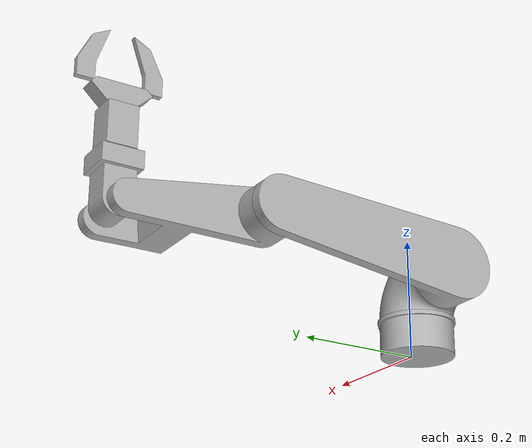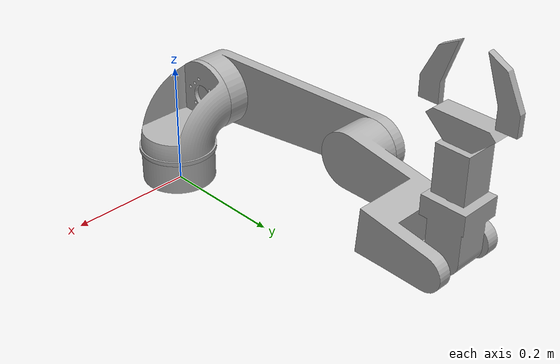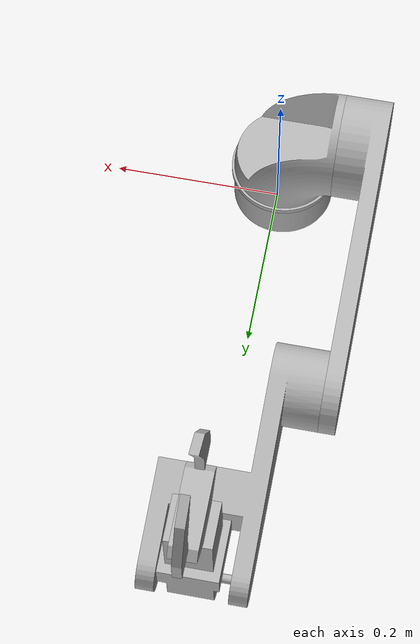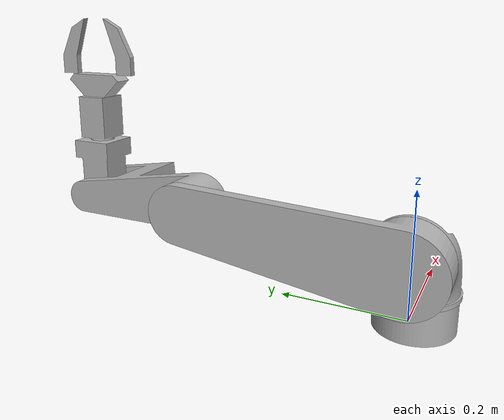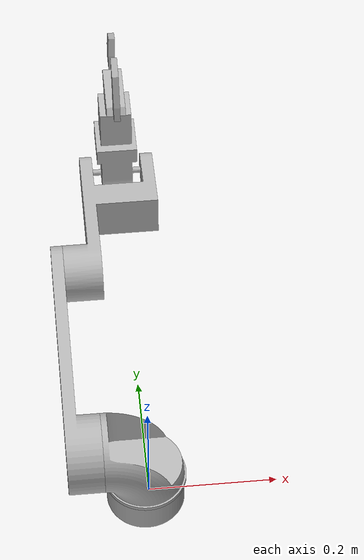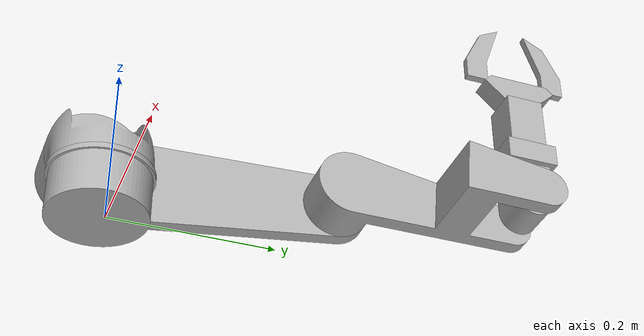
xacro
<?xml version="1.0" ?>
<robot name="rake_robot_arm" xmlns:xacro="http://www.ros.org/wiki/xacro">

<xacro:include filename="$(find rake_robot_arm_description)/urdf/materials.xacro" />
<xacro:include filename="$(find rake_robot_arm_description)/urdf/rake_robot_arm.trans" />
<xacro:include filename="$(find rake_robot_arm_description)/urdf/rake_robot_arm.gazebo" />
<link name="base_link">
  <inertial>
    <origin rpy="0 0 0" xyz="-0.005428619003295954 -0.008613437067487122 0.026559408634131962"/>
    <mass value="0.6833341012676234"/>
    <inertia ixx="0.000775" ixy="-0.0" ixz="-0.0" iyy="0.000775" iyz="-0.0" izz="0.00123"/>
  </inertial>
  <visual>
    <origin rpy="0 0 0" xyz="0 0 0"/>
    <geometry>
      <mesh filename="package://rake_robot_arm_description/meshes/base_link.stl" scale="0.001 0.001 0.001"/>
    </geometry>
    <material name="silver"/>
  </visual>
  <collision>
    <origin rpy="0 0 0" xyz="0 0 0"/>
    <geometry>
      <mesh filename="package://rake_robot_arm_description/meshes/base_link.stl" scale="0.001 0.001 0.001"/>
    </geometry>
  </collision>
</link>

<link name="shell_1">
  <inertial>
    <origin rpy="0 0 0" xyz="3.809967040642459e-07 -4.3706748690044983e-07 0.0035004086341318685"/>
    <mass value="0.0995024703119412"/>
    <inertia ixx="9.9e-05" ixy="0.0" ixz="0.0" iyy="9.9e-05" iyz="0.0" izz="0.000197"/>
  </inertial>
  <visual>
    <origin rpy="0 0 0" xyz="0.005429 0.008613 -0.053059"/>
    <geometry>
      <mesh filename="package://rake_robot_arm_description/meshes/shell_1.stl" scale="0.001 0.001 0.001"/>
    </geometry>
    <material name="silver"/>
  </visual>
  <collision>
    <origin rpy="0 0 0" xyz="0.005429 0.008613 -0.053059"/>
    <geometry>
      <mesh filename="package://rake_robot_arm_description/meshes/shell_1.stl" scale="0.001 0.001 0.001"/>
    </geometry>
  </collision>
</link>

<link name="shoulder_1">
  <inertial>
    <origin rpy="0 0 0" xyz="-0.018487163221973895 -3.702377545759805e-07 0.0361504193632233"/>
    <mass value="0.490155405617113"/>
    <inertia ixx="0.001074" ixy="-0.0" ixz="0.000233" iyy="0.000945" iyz="-0.0" izz="0.001258"/>
  </inertial>
  <visual>
    <origin rpy="0 0 0" xyz="0.005429 0.008613 -0.060059"/>
    <geometry>
      <mesh filename="package://rake_robot_arm_description/meshes/shoulder_1.stl" scale="0.001 0.001 0.001"/>
    </geometry>
    <material name="silver"/>
  </visual>
  <collision>
    <origin rpy="0 0 0" xyz="0.005429 0.008613 -0.060059"/>
    <geometry>
      <mesh filename="package://rake_robot_arm_description/meshes/shoulder_1.stl" scale="0.001 0.001 0.001"/>
    </geometry>
  </collision>
</link>

<link name="lower_arm_1">
  <inertial>
    <origin rpy="0 0 0" xyz="-0.036383643610992306 0.09730146610324698 0.008456243290924675"/>
    <mass value="1.4008276782067164"/>
    <inertia ixx="0.021389" ixy="0.001243" ixz="0.000108" iyy="0.001718" iyz="-0.001627" izz="0.020297"/>
  </inertial>
  <visual>
    <origin rpy="0 0 0" xyz="0.069829 0.008613 -0.125059"/>
    <geometry>
      <mesh filename="package://rake_robot_arm_description/meshes/lower_arm_1.stl" scale="0.001 0.001 0.001"/>
    </geometry>
    <material name="silver"/>
  </visual>
  <collision>
    <origin rpy="0 0 0" xyz="0.069829 0.008613 -0.125059"/>
    <geometry>
      <mesh filename="package://rake_robot_arm_description/meshes/lower_arm_1.stl" scale="0.001 0.001 0.001"/>
    </geometry>
  </collision>
</link>

<link name="upper_arm_1">
  <inertial>
    <origin rpy="0 0 0" xyz="0.06963666934263239 0.09281890879904042 -0.007680587997038496"/>
    <mass value="1.2281524390149194"/>
    <inertia ixx="0.008301" ixy="-0.002974" ixz="0.000247" iyy="0.003124" iyz="0.000597" izz="0.010281"/>
  </inertial>
  <visual>
    <origin rpy="0 0 0" xyz="0.105829 -0.317358 -0.153387"/>
    <geometry>
      <mesh filename="package://rake_robot_arm_description/meshes/upper_arm_1.stl" scale="0.001 0.001 0.001"/>
    </geometry>
    <material name="silver"/>
  </visual>
  <collision>
    <origin rpy="0 0 0" xyz="0.105829 -0.317358 -0.153387"/>
    <geometry>
      <mesh filename="package://rake_robot_arm_description/meshes/upper_arm_1.stl" scale="0.001 0.001 0.001"/>
    </geometry>
  </collision>
</link>

<link name="hand_lower_part_1">
  <inertial>
    <origin rpy="0 0 0" xyz="-0.03999961900329575 2.3144489547100022e-07 0.04330708816134787"/>
    <mass value="2.563698377041008"/>
    <inertia ixx="0.003146" ixy="-0.0" ixz="0.0" iyy="0.003118" iyz="-0.0" izz="0.001428"/>
  </inertial>
  <visual>
    <origin rpy="0 0 0" xyz="-0.034171 -0.540291 -0.134686"/>
    <geometry>
      <mesh filename="package://rake_robot_arm_description/meshes/hand_lower_part_1.stl" scale="0.001 0.001 0.001"/>
    </geometry>
    <material name="silver"/>
  </visual>
  <collision>
    <origin rpy="0 0 0" xyz="-0.034171 -0.540291 -0.134686"/>
    <geometry>
      <mesh filename="package://rake_robot_arm_description/meshes/hand_lower_part_1.stl" scale="0.001 0.001 0.001"/>
    </geometry>
  </collision>
</link>

<link name="wrist_1">
  <inertial>
    <origin rpy="0 0 0" xyz="3.809967041258286e-07 2.3144489724735706e-07 0.03870010593441692"/>
    <mass value="1.4230730046613598"/>
    <inertia ixx="0.000919" ixy="0.0" ixz="0.0" iyy="0.000919" iyz="0.0" izz="0.000582"/>
  </inertial>
  <visual>
    <origin rpy="0 0 0" xyz="0.005829 -0.540291 -0.223686"/>
    <geometry>
      <mesh filename="package://rake_robot_arm_description/meshes/wrist_1.stl" scale="0.001 0.001 0.001"/>
    </geometry>
    <material name="silver"/>
  </visual>
  <collision>
    <origin rpy="0 0 0" xyz="0.005829 -0.540291 -0.223686"/>
    <geometry>
      <mesh filename="package://rake_robot_arm_description/meshes/wrist_1.stl" scale="0.001 0.001 0.001"/>
    </geometry>
  </collision>
</link>

<link name="hand_1">
  <inertial>
    <origin rpy="0 0 0" xyz="3.809967041327675e-07 2.3144489702531246e-07 0.020684138620549408"/>
    <mass value="0.6697341448982068"/>
    <inertia ixx="0.000446" ixy="0.0" ixz="0.0" iyy="0.000118" iyz="-0.0" izz="0.000429"/>
  </inertial>
  <visual>
    <origin rpy="0 0 0" xyz="0.005829 -0.540291 -0.298686"/>
    <geometry>
      <mesh filename="package://rake_robot_arm_description/meshes/hand_1.stl" scale="0.001 0.001 0.001"/>
    </geometry>
    <material name="silver"/>
  </visual>
  <collision>
    <origin rpy="0 0 0" xyz="0.005829 -0.540291 -0.298686"/>
    <geometry>
      <mesh filename="package://rake_robot_arm_description/meshes/hand_1.stl" scale="0.001 0.001 0.001"/>
    </geometry>
  </collision>
</link>

<link name="Component21_1">
  <inertial>
    <origin rpy="0 0 0" xyz="3.809967041371043e-07 -0.008133022057808581 0.03985467828400907"/>
    <mass value="0.18077843580085987"/>
    <inertia ixx="0.000128" ixy="0.0" ixz="0.0" iyy="0.000106" iyz="-3.3e-05" izz="2.5e-05"/>
  </inertial>
  <visual>
    <origin rpy="0 0 0" xyz="0.005829 -0.499291 -0.335686"/>
    <geometry>
      <mesh filename="package://rake_robot_arm_description/meshes/Component21_1.stl" scale="0.001 0.001 0.001"/>
    </geometry>
    <material name="silver"/>
  </visual>
  <collision>
    <origin rpy="0 0 0" xyz="0.005829 -0.499291 -0.335686"/>
    <geometry>
      <mesh filename="package://rake_robot_arm_description/meshes/Component21_1.stl" scale="0.001 0.001 0.001"/>
    </geometry>
  </collision>
</link>

<link name="Component20_1">
  <inertial>
    <origin rpy="0 0 0" xyz="3.8099670410154246e-07 0.008133484947602798 0.03985467828400896"/>
    <mass value="0.18077843580086025"/>
    <inertia ixx="0.000128" ixy="0.0" ixz="-0.0" iyy="0.000106" iyz="3.3e-05" izz="2.5e-05"/>
  </inertial>
  <visual>
    <origin rpy="0 0 0" xyz="0.005829 -0.581291 -0.335686"/>
    <geometry>
      <mesh filename="package://rake_robot_arm_description/meshes/Component20_1.stl" scale="0.001 0.001 0.001"/>
    </geometry>
    <material name="silver"/>
  </visual>
  <collision>
    <origin rpy="0 0 0" xyz="0.005829 -0.581291 -0.335686"/>
    <geometry>
      <mesh filename="package://rake_robot_arm_description/meshes/Component20_1.stl" scale="0.001 0.001 0.001"/>
    </geometry>
  </collision>
</link>

<joint name="Rev1" type="continuous">
  <origin rpy="0 0 0" xyz="-0.005429 -0.008613 0.053059"/>
  <parent link="base_link"/>
  <child link="shell_1"/>
  <axis xyz="0.0 0.0 1.0"/>
</joint>

<joint name="Rigid2" type="fixed">
  <origin rpy="0 0 0" xyz="0.0 0.0 0.007"/>
  <parent link="shell_1"/>
  <child link="shoulder_1"/>
</joint>

<joint name="Rev3" type="revolute">
  <origin rpy="0 0 0" xyz="-0.0644 0.0 0.065"/>
  <parent link="shoulder_1"/>
  <child link="lower_arm_1"/>
  <axis xyz="1.0 -0.0 -0.0"/>
  <limit effort="100" lower="0.0" upper="3.141593" velocity="100"/>
</joint>

<joint name="Rev6" type="continuous">
  <origin rpy="0 0 0" xyz="-0.036 0.325971 0.028328"/>
  <parent link="lower_arm_1"/>
  <child link="upper_arm_1"/>
  <axis xyz="1.0 -0.0 -0.0"/>
</joint>

<joint name="Rev15" type="continuous">
  <origin rpy="0 0 0" xyz="0.14 0.222933 -0.018701"/>
  <parent link="upper_arm_1"/>
  <child link="hand_lower_part_1"/>
  <axis xyz="-1.0 0.0 0.0"/>
</joint>

<joint name="Rev16" type="continuous">
  <origin rpy="0 0 0" xyz="-0.04 0.0 0.089"/>
  <parent link="hand_lower_part_1"/>
  <child link="wrist_1"/>
  <axis xyz="0.0 0.0 1.0"/>
</joint>

<joint name="Rigid19" type="fixed">
  <origin rpy="0 0 0" xyz="0.0 0.0 0.075"/>
  <parent link="wrist_1"/>
  <child link="hand_1"/>
</joint>

<joint name="Rev20" type="revolute">
  <origin rpy="0 0 0" xyz="0.0 -0.041 0.037"/>
  <parent link="hand_1"/>
  <child link="Component21_1"/>
  <axis xyz="1.0 -0.0 -0.0"/>
  <limit effort="100" lower="-0.174533" upper="0.785398" velocity="100"/>
</joint>

<joint name="Rev21" type="revolute">
  <origin rpy="0 0 0" xyz="0.0 0.041 0.037"/>
  <parent link="hand_1"/>
  <child link="Component20_1"/>
  <axis xyz="1.0 -0.0 -0.0"/>
  <limit effort="100" lower="-0.785398" upper="0.174533" velocity="100"/>
</joint>

</robot>

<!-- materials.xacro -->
<robot name="rake_robot_arm" xmlns:xacro="http://www.ros.org/wiki/xacro" >

<material name="silver">
  <color rgba="0.700 0.700 0.700 1.000"/>
</material>

</robot>

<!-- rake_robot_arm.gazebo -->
<robot name="rake_robot_arm" xmlns:xacro="http://www.ros.org/wiki/xacro" >

<xacro:property name="body_color" value="Gazebo/Silver" />

<gazebo>
  <plugin filename="libgazebo_ros_control.so" name="control"/>
</gazebo>
<gazebo reference="base_link">
  <material>${body_color}</material>
  <mu1>0.2</mu1>
  <mu2>0.2</mu2>
  <selfCollide>true</selfCollide>
  <gravity>true</gravity>
</gazebo>

<gazebo reference="shell_1">
  <material>${body_color}</material>
  <mu1>0.2</mu1>
  <mu2>0.2</mu2>
  <selfCollide>true</selfCollide>
</gazebo>

<gazebo reference="shoulder_1">
  <material>${body_color}</material>
  <mu1>0.2</mu1>
  <mu2>0.2</mu2>
  <selfCollide>true</selfCollide>
</gazebo>

<gazebo reference="lower_arm_1">
  <material>${body_color}</material>
  <mu1>0.2</mu1>
  <mu2>0.2</mu2>
  <selfCollide>true</selfCollide>
</gazebo>

<gazebo reference="upper_arm_1">
  <material>${body_color}</material>
  <mu1>0.2</mu1>
  <mu2>0.2</mu2>
  <selfCollide>true</selfCollide>
</gazebo>

<gazebo reference="hand_lower_part_1">
  <material>${body_color}</material>
  <mu1>0.2</mu1>
  <mu2>0.2</mu2>
  <selfCollide>true</selfCollide>
</gazebo>

<gazebo reference="wrist_1">
  <material>${body_color}</material>
  <mu1>0.2</mu1>
  <mu2>0.2</mu2>
  <selfCollide>true</selfCollide>
</gazebo>

<gazebo reference="hand_1">
  <material>${body_color}</material>
  <mu1>0.2</mu1>
  <mu2>0.2</mu2>
  <selfCollide>true</selfCollide>
</gazebo>

<gazebo reference="Component21_1">
  <material>${body_color}</material>
  <mu1>0.2</mu1>
  <mu2>0.2</mu2>
  <selfCollide>true</selfCollide>
</gazebo>

<gazebo reference="Component20_1">
  <material>${body_color}</material>
  <mu1>0.2</mu1>
  <mu2>0.2</mu2>
  <selfCollide>true</selfCollide>
</gazebo>

</robot>
